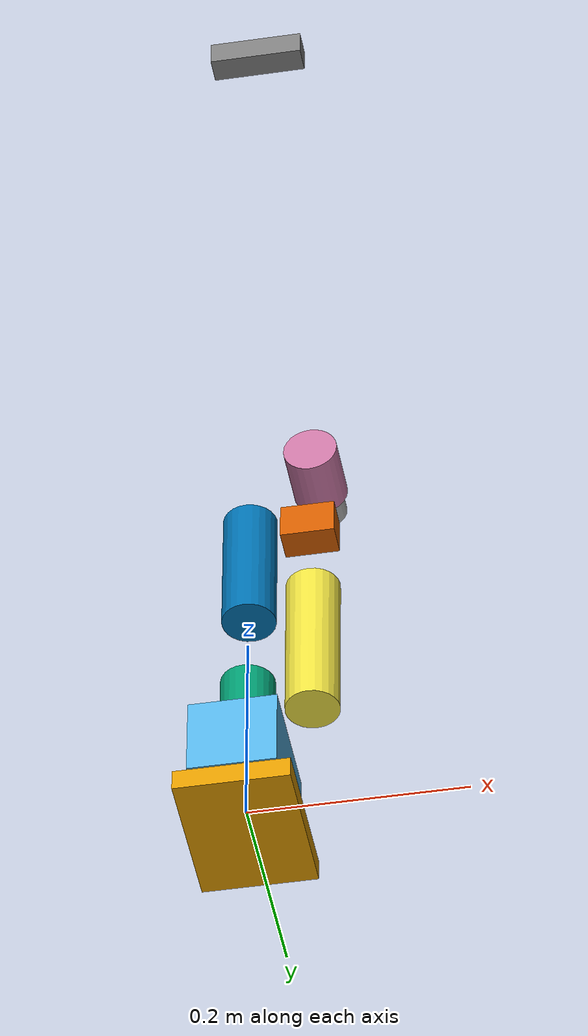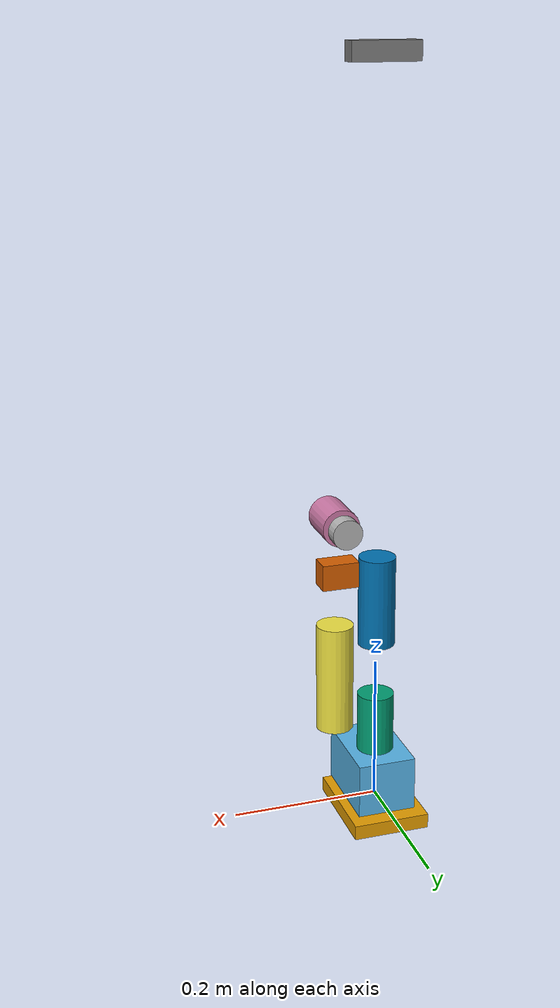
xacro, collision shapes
<?xml version="1.0"?>
<robot name="my_robot" xmlns:xacro="http://www.ros.org/wiki/xacro" >

  <xacro:property name="joint_effort" value="56.0"/>
  <xacro:property name="joint_velocity" value="2.792527"/>
  <xacro:property name="joint_damping" value="0.0"/>
  <xacro:property name="joint_friction" value="0.0"/>

  <xacro:property name="link1_mass" value="0.12"/>
  <xacro:property name="link2_mass" value="0.19"/>
  <xacro:property name="link3_mass" value="0.16"/>
  <xacro:property name="link4_mass" value="0.124"/>
  <xacro:property name="link5_mass" value="0.11"/>
  <xacro:property name="link6_mass" value="0.0739"/>
  <xacro:property name="flange_mass" value="0.035"/>

    <xacro:property name="M_PI" value="3.1415926535897931" />

    <xacro:property name="d435_cam_width" value="0.090"/>
    <xacro:property name="d435_cam_height" value="0.025"/>
    <xacro:property name="d435_cam_depth" value="0.02505"/>

  <xacro:macro name="link_inertial" params="mass ixx iyy izz">
    <inertial>
      <origin xyz="0 0 0.0" rpy="0 0 0"/>
      <mass value="${mass}"/>
      <inertia
        ixx="${ixx}" ixy="0.0" ixz="0.0"
        iyy="${iyy}" iyz="0.0"
        izz="${izz}"/>
    </inertial>
  </xacro:macro>

  <xacro:macro name="material_visual" params="ref_link ambient diffuse specular">
    <gazebo reference="${ref_link}">
      <visual>
        <material>
          <ambient>${ambient}</ambient>
          <diffuse>${diffuse}</diffuse>
          <specular>${specular}</specular>
        </material>
      </visual>
    </gazebo>
  </xacro:macro>

    <link name="base_link">
        <inertial>
            <origin xyz="0 0 0.0" rpy="0 0 0"/>
            <mass value="1"/>
            <inertia
                ixx="0.000784" ixy="0.0" ixz="0.0"
                iyy="0.000867" iyz="0.0"
                izz="0.001598"/>
        </inertial>
        <visual>
            <geometry>
                <mesh filename="file://$(find robot_description)/meshes/g_shape_base_v2_0/visual/base_link.dae"/>
            </geometry>
            <origin xyz="0.0 0 -0.03" rpy="0 0 1.5708"/>
        </visual>
        <collision>
            <geometry>
                <box size="0.105 0.14 0.02"/>
            </geometry>
            <origin xyz="0.0 0.0 -0.015" rpy="0 0 0"/>
        </collision>
    </link>
    <gazebo reference="base_link">
        <visual>
            <material>
                <ambient>0.5 0.5 0.5 1</ambient>
                <diffuse>0.5 0.5 0.5 1</diffuse>
                <specular>0.5 0.5 0.5 1</specular>
            </material>
        </visual>
    </gazebo>

    <link name="link1">
      <xacro:link_inertial mass="${link1_mass}" ixx="0.000148" iyy="0.000148" izz="0.000096"/>
      <visual>
        <geometry>
          <mesh filename="file://$(find robot_description)/meshes/mycobot_280/visual/link1.dae"/>
        </geometry>
        <origin xyz="0.0 0 0" rpy="0 0 -1.5708"/>
      </visual>
      <collision>
        <geometry>
          <box size="0.08 0.12 0.075"/>
        </geometry>
        <origin xyz="0.0 -0.01 0.034" rpy="0 0 0"/>
      </collision>
    </link>

    <link name="link2">
      <xacro:link_inertial mass="${link2_mass}" ixx="0.000148" iyy="0.000148" izz="0.000096"/>
      <visual>
        <geometry>
          <mesh filename="file://$(find robot_description)/meshes/mycobot_280/visual/link2.dae"/>
        </geometry>
        <origin xyz="0.0 0 -0.06096" rpy="0 0 -1.5708"/>
      </visual>
      <collision>
        <geometry>
          <cylinder radius="0.025" length="0.085"/>
        </geometry>
        <origin xyz="0.0 0 -0.02" rpy="0 0 -1.5708"/>
      </collision>
    </link>

    <link name="link3">
      <xacro:link_inertial mass="${link3_mass}" ixx="0.000148" iyy="0.000148" izz="0.000096"/>
      <visual>
        <geometry>
          <mesh filename="file://$(find robot_description)/meshes/mycobot_280/visual/link3.dae"/>
        </geometry>
        <origin xyz="0.0 0 0.03256" rpy="0 -1.5708 0"/>
      </visual>
      <collision>
        <geometry>
          <cylinder radius="0.025" length="0.15"/>
        </geometry>
        <origin xyz="-0.058 0 0.059" rpy="0 -1.5708 0"/>
      </collision>
    </link>

    <link name="link4">
      <xacro:link_inertial mass="${link4_mass}" ixx="0.000103" iyy="0.000103" izz="0.000096"/>
      <visual>
        <geometry>
          <mesh filename="file://$(find robot_description)/meshes/mycobot_280/visual/link4.dae"/>
        </geometry>
        <origin xyz="0.0 0 0.03056" rpy="0 -1.5708 0"/>
      </visual>
      <collision>
        <geometry>
          <cylinder radius="0.025" length="0.125"/>
        </geometry>
        <origin xyz="-0.05 0 0.0" rpy="0 -1.5708 0"/>
      </collision>
    </link>

    <link name="link5">
      <xacro:link_inertial mass="${link5_mass}" ixx="0.000103" iyy="0.000103" izz="0.000096"/>
      <visual>
        <geometry>
          <mesh filename="file://$(find robot_description)/meshes/mycobot_280/visual/link5.dae"/>
        </geometry>
        <origin xyz="0.0 0 -0.03356" rpy="-1.5708 0 0"/>
      </visual>
      <collision>
        <geometry>
          <box size="0.03 0.035 0.05"/>
        </geometry>
        <origin xyz="0.0 0 -0.005" rpy="0 0.0 0"/>
      </collision>
    </link>

    <link name="link6">
      <xacro:link_inertial mass="${link6_mass}" ixx="0.00006649" iyy="0.00006649" izz="0.000096"/>
      <visual>
        <geometry>
          <mesh filename="file://$(find robot_description)/meshes/mycobot_280/visual/link6.dae"/>
        </geometry>
        <origin xyz="0 0.00 -0.038" rpy="0 0 0"/>
      </visual>
      <collision>
        <geometry>
          <cylinder radius="0.025" length="0.06"/>
        </geometry>
        <origin xyz="0 0.00 0.0" rpy="-1.5708 0 0"/>
      </collision>
    </link>

    <link name="flange_link">
      <xacro:link_inertial mass="${flange_mass}" ixx="0.0000149" iyy="0.0000149" izz="0.0000196"/>
      <visual>
        <geometry>
          <mesh filename="file://$(find robot_description)/meshes/mycobot_280/visual/link7.dae"/>
        </geometry>
        <origin xyz="0.0 0 -0.012" rpy="0 0 0"/>
      </visual>
      <collision>
        <geometry>
          <cylinder radius="0.02" length="0.02"/>
        </geometry>
        <origin xyz="0 0.00 0.0" rpy="0 0 0"/>
      </collision>
    </link>

    <link name="camera_link">
      <visual>
        <origin rpy="0 0 0"/>
        <geometry>
          <mesh filename="file://$(find robot_description)/meshes/d435/visual/d435.stl"/>
        </geometry>
        <material><color rgba="0.5 0.5 0.5 1"/></material>
      </visual>

      <collision>
        <geometry>
          <box size="${d435_cam_depth} ${d435_cam_width} ${d435_cam_height}"/>
        </geometry>
      </collision>

      <inertial>
        <mass value="0.072"/>
        <origin xyz="0 0 0"/>
        <inertia ixx="0.00388" ixy="0" ixz="0" iyy="0.00049" iyz="0" izz="0.00387"/>
      </inertial>
    </link>

    <joint name="base_link_to_link1" type="fixed">
      <parent link="base_link"/>
      <child link="link1"/>
    </joint>

    <joint name="link1_to_link2" type="revolute">
      <axis xyz="0 0 1"/>
      <limit effort="${joint_effort}" lower="-2.879793" upper="2.879793" velocity="${joint_velocity}"/>
      <parent link="link1"/>
      <child link="link2"/>
      <origin xyz="0 0 0.13156" rpy="0 0 1.5708"/>
      <dynamics damping="${joint_damping}" friction="${joint_friction}"/>
    </joint>

    <joint name="link2_to_link3" type="revolute">
      <axis xyz="0 0 1"/>
      <limit effort="${joint_effort}" lower="-2.879793" upper="2.879793" velocity="${joint_velocity}"/>
      <parent link="link2"/>
      <child link="link3"/>
      <origin xyz="0 0 -0.001" rpy="0 1.5708 -1.5708"/>
      <dynamics damping="${joint_damping}" friction="${joint_friction}"/>
    </joint>

    <joint name="link3_to_link4" type="revolute">
      <axis xyz="0 0 1"/>
      <limit effort="${joint_effort}" lower="-2.879793" upper="2.879793" velocity="${joint_velocity}"/>
      <parent link="link3"/>
      <child link="link4"/>
      <origin xyz="-0.1104 0 0" rpy="0 0 0"/>
      <dynamics damping="${joint_damping}" friction="${joint_friction}"/>
    </joint>

    <joint name="link4_to_link5" type="revolute">
      <axis xyz="0 0 1"/>
      <limit effort="${joint_effort}" lower="-2.879793" upper="2.879793" velocity="${joint_velocity}"/>
      <parent link="link4"/>
      <child link="link5"/>
      <origin xyz="-0.096 0 0.06062" rpy="0 0 -1.5708"/>
      <dynamics damping="${joint_damping}" friction="${joint_friction}"/>
    </joint>

    <joint name="link5_to_link6" type="revolute">
      <axis xyz="0 0 1"/>
      <limit effort="${joint_effort}" lower="-2.879793" upper="2.879793" velocity="${joint_velocity}"/>
      <parent link="link5"/>
      <child link="link6"/>
      <origin xyz="0 -0.07318 0" rpy="1.5708 -1.5708 0"/>
      <dynamics damping="${joint_damping}" friction="${joint_friction}"/>
    </joint>

    <joint name="link6_to_flange_link" type="revolute">
      <axis xyz="0 0 1"/>
      <limit effort="${joint_effort}" lower="-3.05" upper="3.05" velocity="${joint_velocity}"/>
      <parent link="link6"/>
      <child link="flange_link"/>
      <origin xyz="0 0.0456 0" rpy="-1.5708 0 0"/>
      <dynamics damping="${joint_damping}" friction="${joint_friction}"/>
    </joint>

    <joint name="camera_link" type="fixed">
      <parent link="base_link"/>
      <child link="camera_link"/>
      <origin xyz="0 0 1" rpy=" 0 1.571 -1.571"/>

    </joint>

    <xacro:material_visual ref_link="link1" ambient="0.5 0.5 0.5 1" diffuse="0.5 0.5 0.5 1" specular="0.5 0.5 0.5 1"/>
    <xacro:material_visual ref_link="link2" ambient="1 1 1 1" diffuse="1 1 1 1" specular="1 1 1 1"/>
    <xacro:material_visual ref_link="link3" ambient="1 1 1 1" diffuse="1 1 1 1" specular="1 1 1 1"/>
    <xacro:material_visual ref_link="link4" ambient="1 1 1 1" diffuse="1 1 1 1" specular="1 1 1 1"/>
    <xacro:material_visual ref_link="link5" ambient="1 1 1 1" diffuse="1 1 1 1" specular="1 1 1 1"/>
    <xacro:material_visual ref_link="link6" ambient="1 1 1 1" diffuse="1 1 1 1" specular="1 1 1 1"/>
    <xacro:material_visual ref_link="flange_link" ambient="0.5 0.5 0.5 1" diffuse="0.5 0.5 0.5 1" specular="0.5 0.5 0.5 1"/>
    <gazebo reference="camera_link">
      <sensor type="depth" name="realsense_depth">
        <update_rate>30</update_rate>

        <camera>
          <horizontal_fov>1.5184</horizontal_fov>
          <image>
            <width>640</width>
            <height>480</height>
            <format>R8G8B8</format>
          </image>
          <clip>
            <near>0.05</near>
            <far>5.0</far>
          </clip>
        </camera>

        <plugin
          name="gazebo_ros_openni_kinect"
          filename="libgazebo_ros_camera.so">

          <always_on>true</always_on>
          <camera_name>camera</camera_name>

          <image_topic_name>camera/color/image_raw</image_topic_name>
          <camera_info_topic_name>camera/color/camera_info</camera_info_topic_name>

          <depth_image_topic_name>camera/depth/image_raw</depth_image_topic_name>
          <depth_camera_info_topic_name>camera/depth/camera_info</depth_camera_info_topic_name>

          <point_cloud_topic_name>camera/depth/color/points</point_cloud_topic_name>

          <frame_name>camera_head_depth_optical_frame</frame_name>
        </plugin>

      </sensor>
    </gazebo>

</robot>
